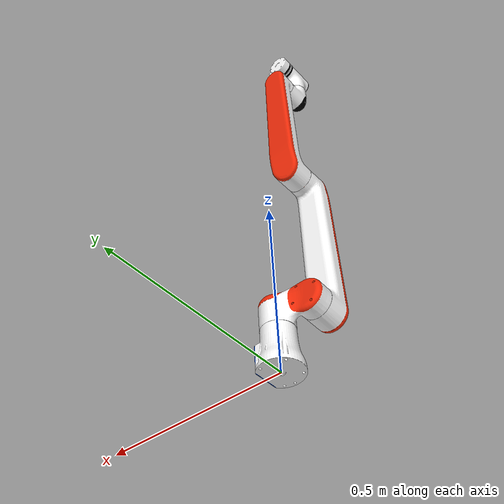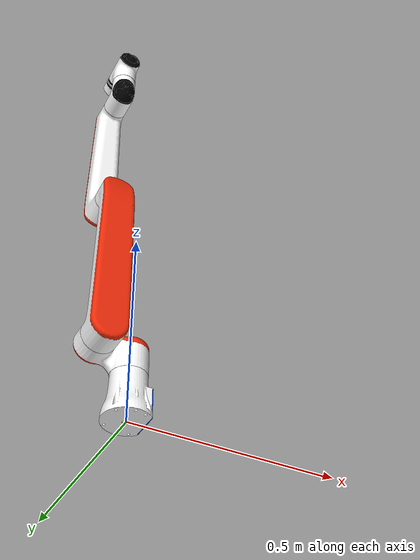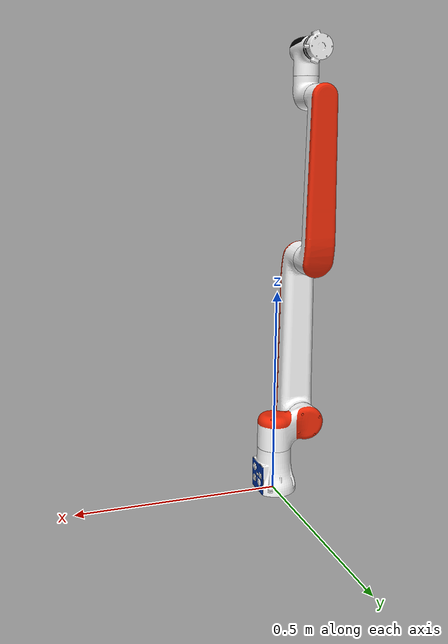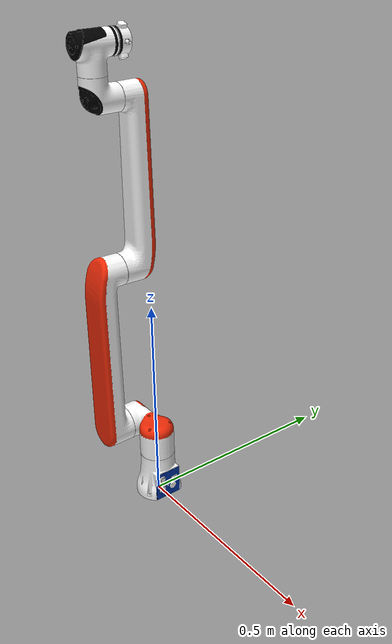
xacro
<?xml version='1.0' encoding='utf-8'?>
<robot name="rm_eco63_description">
  <link name="base_root" />
  <joint name="base_root_joint" type="fixed">
    <origin rpy="0 0 0" xyz="0 0 0" />
    <parent link="base_root" />
    <child link="base_link" />
  </joint>
  <link name="base_link">
    <inertial>
      <origin rpy="0 0 0" xyz="0.00020533 -8.2462E-05 0.042566" />
      <mass value="1" />
      <inertia ixx="0.00082414" ixy="-2.9336E-06" ixz="2.8699E-05" iyy="0.0008206" iyz="-2.2123E-06" izz="0.00068569" />
    </inertial>
    <collision>
      <origin rpy="0 0 0" xyz="0 0 0" />
      <geometry>
        <mesh filename="package://rm_description/meshes/rm_eco63_arm/base_link.STL" />
      </geometry>
    </collision>
    <visual>
      <origin xyz="0 0 0" rpy="0 0 0" />
      <geometry>
        <mesh filename="package://rm_description/meshes/dae/base/base_v1.0.dae" />
      </geometry>
    </visual>
  </link>
  <link name="Link1">
    <inertial>
      <origin rpy="0 0 0" xyz="-0.0122 -0.0001 -0.0346" />
      <mass value="1.6026" />
      <inertia ixx="0.0020078355" ixy="-0.000043739" ixz="-0.0006663696" iyy="0.0033806191" iyz="-0.0000114927" izz="0.0025157844" />
    </inertial>
    <collision>
      <origin rpy="0 0 0" xyz="0 0 0" />
      <geometry>
        <mesh filename="package://rm_description/meshes/rm_eco63_arm/Link1.STL" />
      </geometry>
    </collision>
    <visual>
      <origin xyz="0 0 0" rpy="0 0 0" />
      <geometry>
        <mesh filename="package://rm_description/meshes/dae/eco63/link1_v1.0.dae" />
      </geometry>
    </visual>
  </link>
  <joint name="joint1" type="revolute">
    <origin rpy="0 0 0" xyz="0 0 0.1625" />
    <parent link="base_link" />
    <child link="Link1" />
    <axis xyz="0 0 1" />
    <limit effort="60" lower="-3.105" upper="3.105" velocity="3.14" />
  </joint>
  <link name="Link2">
    <inertial>
      <origin rpy="0 0 0" xyz="0.1236 -0.0001 -0.0551" />
      <mass value="2.8169" />
      <inertia ixx="0.0030513772" ixy="-0.0000024724" ixz="-0.0036915182" iyy="0.059635782" iyz="-0.0000047509" izz="0.059632877" />
    </inertial>
    <collision>
      <origin rpy="0 0 0" xyz="0 0 0" />
      <geometry>
        <mesh filename="package://rm_description/meshes/rm_eco63_arm/Link2.STL" />
      </geometry>
    </collision>
    <visual>
      <origin xyz="0 0 0" rpy="0 0 0" />
      <geometry>
        <mesh filename="package://rm_description/meshes/dae/eco63/link2_v1.0.dae" />
      </geometry>
    </visual>
  </link>
  <joint name="joint2" type="revolute">
    <origin rpy="1.5708 -1.5708 0" xyz="-0.086 0 0" />
    <parent link="Link1" />
    <child link="Link2" />
    <axis xyz="0 0 -1" />
    <limit effort="60" lower="-3.105" upper="2.355" velocity="3.14" />
  </joint>
  <link name="Link3">
    <inertial>
      <origin rpy="0 0 0" xyz="0.1603 -0.0001 0.0054" />
      <mass value="2.6857" />
      <inertia ixx="0.0029686196" ixy="-0.0000071564" ixz="-0.003498838" iyy="0.0669637576" iyz="-0.0000078642" izz="0.066058064" />
    </inertial>
    <collision>
      <origin rpy="0 0 0" xyz="0 0 0" />
      <geometry>
        <mesh filename="package://rm_description/meshes/rm_eco63_arm/Link3.STL" />
      </geometry>
    </collision>
    <visual>
      <origin xyz="0 0 0" rpy="0 0 0" />
      <geometry>
        <mesh filename="package://rm_description/meshes/dae/eco63/link3_v1.0.dae" />
      </geometry>
    </visual>
  </link>
  <joint name="joint3" type="revolute">
    <origin rpy="3.1416 -0.0087266 0" xyz="0.41 0 0" />
    <parent link="Link2" />
    <child link="Link3" />
    <axis xyz="-0.0087265 0 0.99996" />
    <limit effort="30" lower="-2.93" upper="2.756" velocity="3.14" />
  </joint>
  <link name="Link4">
    <inertial>
      <origin rpy="0 0 0" xyz="0 -0.0359 0.0037" />
      <mass value="0.625" />
      <inertia ixx="0.0005456336" ixy="-0.000000119" ixz="-0.0000001203" iyy="0.0003173345" iyz="-0.0000813961" izz="0.0005169693" />
    </inertial>
    <collision>
      <origin rpy="0 0 0" xyz="0 0 0" />
      <geometry>
        <mesh filename="package://rm_description/meshes/rm_eco63_arm/Link4.STL" />
      </geometry>
    </collision>
    <visual>
      <origin xyz="0 0 0" rpy="0 0 0" />
      <geometry>
        <mesh filename="package://rm_description/meshes/dae/eco63/link4_v1.0.dae" />
      </geometry>
    </visual>
  </link>
  <joint name="joint4" type="revolute">
    <origin rpy="-0.0087266 0 1.5708" xyz="0.38049 0 -0.054981" />
    <parent link="Link3" />
    <child link="Link4" />
    <axis xyz="0 0 1" />
    <limit effort="10" lower="-3.105" upper="3.105" velocity="3.14" />
  </joint>
  <link name="Link5">
    <inertial>
      <origin rpy="0 0 0" xyz="0 0.0246 -0.0066" />
      <mass value="0.6743" />
      <inertia ixx="0.0006850659" ixy="-0.0000005787" ixz="-0.0000000103" iyy="0.0003873373" iyz="-0.0001135208" izz="0.0006178918" />
    </inertial>
    <collision>
      <origin rpy="0 0 0" xyz="0 0 0" />
      <geometry>
        <mesh filename="package://rm_description/meshes/rm_eco63_arm/Link5.STL" />
      </geometry>
    </collision>
    <visual>
      <origin xyz="0 0 0" rpy="0 0 0" />
      <geometry>
        <mesh filename="package://rm_description/meshes/dae/eco63/link5_v1.0.dae" />
      </geometry>
    </visual>
  </link>
  <joint name="joint5" type="revolute">
    <origin rpy="1.5708 0 0" xyz="0 -0.11 -0.0006" />
    <parent link="Link4" />
    <child link="Link5" />
    <axis xyz="0 0 1" />
    <limit effort="10" lower="-3.105" upper="3.105" velocity="3.14" />
  </joint>
  <link name="Link6">
    <inertial>
      <origin rpy="0 0 0" xyz="0.001 0 -0.0101" />
      <mass value="0.107" />
      <inertia ixx="0.0000441232" ixy="-0.0000000636" ixz="-0.0000002997" iyy="0.0000350778" iyz="-0.0000000289" izz="0.0000654409" />
    </inertial>
    <collision>
      <origin rpy="0 0 0" xyz="0 0 0" />
      <geometry>
        <mesh filename="package://rm_description/meshes/rm_eco63_arm/Link6.STL" />
      </geometry>
    </collision>
    <visual>
      <origin xyz="0 0 0" rpy="0 0 0" />
      <geometry>
        <mesh filename="package://rm_description/meshes/dae/eco63/link6_v1.0.dae" />
      </geometry>
    </visual>
  </link>
  <joint name="joint6" type="revolute">
    <origin rpy="-1.5708 0 0" xyz="-0.00010641 0.0797 -0.00010731" />
    <parent link="Link5" />
    <child link="Link6" />
    <axis xyz="0 0 1" />
    <limit effort="10" lower="-6.28" upper="6.28" velocity="3.14" />
  </joint>
</robot>
